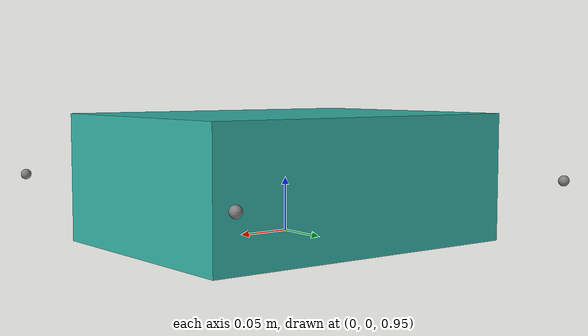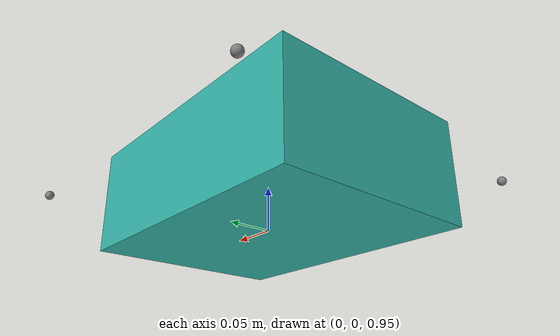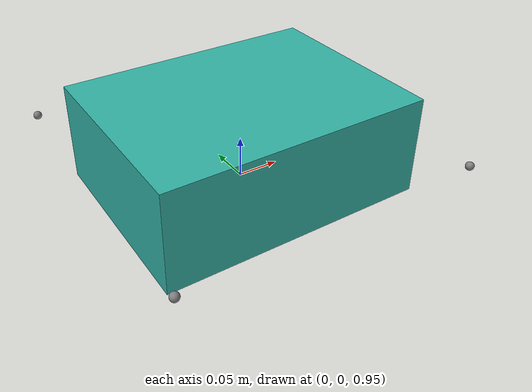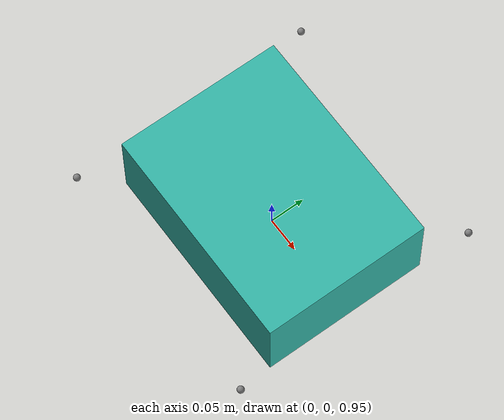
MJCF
<!-- 来源：本项目原创假设四旋翼，非实机标定；MJCF 格式由 MuJoCo 定义。 -->
<mujoco model="delivery_quadrotor_development">
  <compiler angle="radian"/>
  <option timestep="0.002" gravity="0 0 -9.81" integrator="RK4"/>
  <worldbody>
    <geom name="ground" type="plane" size="20 20 .1" rgba=".3 .4 .3 1" friction=".8 .02 .01"/>
    <body name="drone" pos="0 0 1">
      <freejoint/>
      <inertial pos="0 0 0" mass="1.4" diaginertia=".025 .025 .045"/>
      <geom name="fuselage" type="box" size=".16 .12 .06" rgba=".2 .7 .65 1"/>
      <site name="front_left" pos=".18 .18 0"/>
      <site name="front_right" pos=".18 -.18 0"/>
      <site name="rear_left" pos="-.18 .18 0"/>
      <site name="rear_right" pos="-.18 -.18 0"/>
    </body>
  </worldbody>
  <actuator>
    <motor name="rotor_fl" site="front_left" gear="0 0 1 0 0 .015" ctrllimited="true" ctrlrange="0 8"/>
    <motor name="rotor_fr" site="front_right" gear="0 0 1 0 0 -.015" ctrllimited="true" ctrlrange="0 8"/>
    <motor name="rotor_rl" site="rear_left" gear="0 0 1 0 0 -.015" ctrllimited="true" ctrlrange="0 8"/>
    <motor name="rotor_rr" site="rear_right" gear="0 0 1 0 0 .015" ctrllimited="true" ctrlrange="0 8"/>
  </actuator>
</mujoco>
